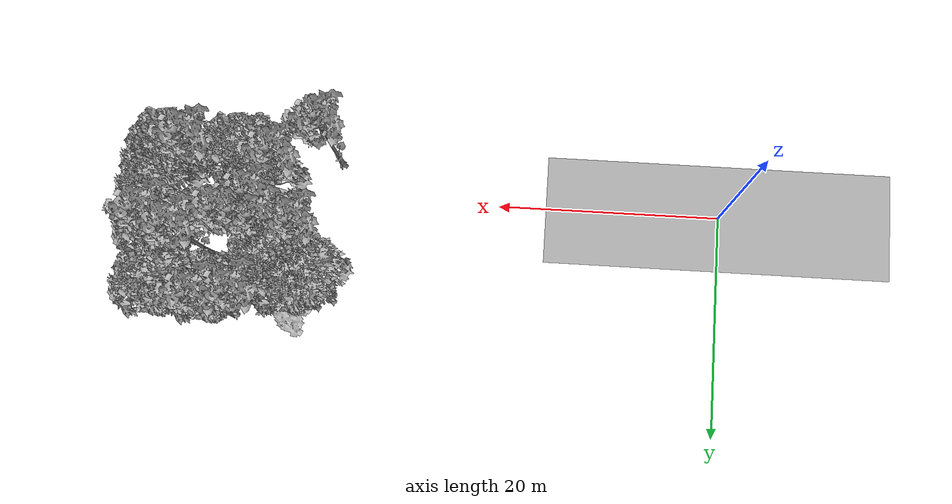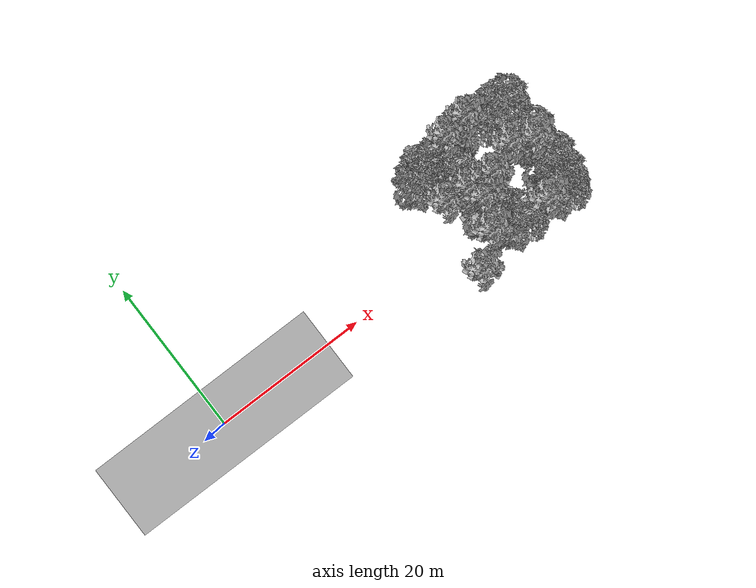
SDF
<sdf version="1.7">
 <world name="default">
  <model name="ground_plane">
   <static>1</static>
   <link name="link">
    <collision name="collision">
     <pose>-50 0 0 0 -0 0</pose>
     <geometry><plane><normal>0 0 1</normal><size>100 100</size></plane></geometry>
     <surface><contact><ode><min_depth>0.01</min_depth><max_vel>0</max_vel></ode></contact></surface>
    </collision>
    <visual name="grass">
     <cast_shadows>0</cast_shadows>
     <geometry>
      <mesh>
       <scale>0.5814285714285714 0.18142857142857144 0.1</scale>
       <uri>file://grass_plane/meshes/grass_plane.dae</uri>
      </mesh>
     </geometry>
    </visual>
   </link>
  </model>
  <model name="Tree 21">
   <static>1</static>
   <pose>36.001435455623735 5.011939128004059 0 1.57079 -0 0</pose>
   <link name="link">
    <collision name="collision">
     <geometry><mesh><scale>3.5 5 3.5</scale><uri>model://tree_9/meshes/tree_9.obj</uri></mesh></geometry>
    </collision>
    <visual name="visual">
     <geometry><mesh><scale>3.5 5 3.5</scale><uri>model://tree_9/meshes/tree_9.obj</uri></mesh></geometry>
    </visual>
   </link>
  </model>
  <model name="Tree 44">
   <static>1</static>
   <pose>38.991679474245345 7.388088115906413 0 1.57079 -0 0</pose>
   <link name="link">
    <collision name="collision">
     <geometry><mesh><scale>3.5 5 3.5</scale><uri>model://tree_2/meshes/tree_2.obj</uri></mesh></geometry>
    </collision>
    <visual name="visual">
     <geometry><mesh><scale>3.5 5 3.5</scale><uri>model://tree_2/meshes/tree_2.obj</uri></mesh></geometry>
    </visual>
   </link>
  </model>
  <model name="Tree 66">
   <static>1</static>
   <pose>35.595811001072434 8.510973884273003 0 1.57079 -0 0</pose>
   <link name="link">
    <collision name="collision">
     <geometry><mesh><scale>3.5 5 3.5</scale><uri>model://tree_2/meshes/tree_2.obj</uri></mesh></geometry>
    </collision>
    <visual name="visual">
     <geometry><mesh><scale>3.5 5 3.5</scale><uri>model://tree_2/meshes/tree_2.obj</uri></mesh></geometry>
    </visual>
   </link>
  </model>
  <model name="Tree 69">
   <static>1</static>
   <pose>43.19990417945013 11.152635457148062 0 1.57079 -0 0</pose>
   <link name="link">
    <collision name="collision">
     <geometry><mesh><scale>3.5 5 3.5</scale><uri>model://tree_9/meshes/tree_9.obj</uri></mesh></geometry>
    </collision>
    <visual name="visual">
     <geometry><mesh><scale>3.5 5 3.5</scale><uri>model://tree_9/meshes/tree_9.obj</uri></mesh></geometry>
    </visual>
   </link>
  </model>
  <model name="Tree 88">
   <static>1</static>
   <pose>39.724859648199455 1.0489064392241367 0 1.57079 -0 0</pose>
   <link name="link">
    <collision name="collision">
     <geometry><mesh><scale>3.5 5 3.5</scale><uri>model://tree_2/meshes/tree_2.obj</uri></mesh></geometry>
    </collision>
    <visual name="visual">
     <geometry><mesh><scale>3.5 5 3.5</scale><uri>model://tree_2/meshes/tree_2.obj</uri></mesh></geometry>
    </visual>
   </link>
  </model>
  <model name="Tree 93">
   <static>1</static>
   <pose>38.81823168101276 4.84569948492209 0 1.57079 -0 0</pose>
   <link name="link">
    <collision name="collision">
     <geometry><mesh><scale>3.5 5 3.5</scale><uri>model://tree_9/meshes/tree_9.obj</uri></mesh></geometry>
    </collision>
    <visual name="visual">
     <geometry><mesh><scale>3.5 5 3.5</scale><uri>model://tree_9/meshes/tree_9.obj</uri></mesh></geometry>
    </visual>
   </link>
  </model>
  <model name="Tree 135">
   <static>1</static>
   <pose>48.08057356001767 9.816680612721456 0 1.57079 -0 0</pose>
   <link name="link">
    <collision name="collision">
     <geometry><mesh><scale>3.5 5 3.5</scale><uri>model://tree_2/meshes/tree_2.obj</uri></mesh></geometry>
    </collision>
    <visual name="visual">
     <geometry><mesh><scale>3.5 5 3.5</scale><uri>model://tree_2/meshes/tree_2.obj</uri></mesh></geometry>
    </visual>
   </link>
  </model>
  <model name="Tree 167">
   <static>1</static>
   <pose>41.82630511120624 4.496623934367239 0 1.57079 -0 0</pose>
   <link name="link">
    <collision name="collision">
     <geometry><mesh><scale>3.5 5 3.5</scale><uri>model://tree_9/meshes/tree_9.obj</uri></mesh></geometry>
    </collision>
    <visual name="visual">
     <geometry><mesh><scale>3.5 5 3.5</scale><uri>model://tree_9/meshes/tree_9.obj</uri></mesh></geometry>
    </visual>
   </link>
  </model>
  <model name="Tree 173">
   <static>1</static>
   <pose>45.07631411805751 -1.387641726367292 0 1.57079 -0 0</pose>
   <link name="link">
    <collision name="collision">
     <geometry><mesh><scale>3.5 5 3.5</scale><uri>model://tree_9/meshes/tree_9.obj</uri></mesh></geometry>
    </collision>
    <visual name="visual">
     <geometry><mesh><scale>3.5 5 3.5</scale><uri>model://tree_9/meshes/tree_9.obj</uri></mesh></geometry>
    </visual>
   </link>
  </model>
  <model name="Tree 175">
   <static>1</static>
   <pose>37.676023382713424 10.560812747568534 0 1.57079 -0 0</pose>
   <link name="link">
    <collision name="collision">
     <geometry><mesh><scale>4 2.5 4</scale><uri>model://tree_1/meshes/tree_1.obj</uri></mesh></geometry>
    </collision>
    <visual name="visual">
     <geometry><mesh><scale>4 2.5 4</scale><uri>model://tree_1/meshes/tree_1.obj</uri></mesh></geometry>
    </visual>
   </link>
  </model>
  <model name="Tree 183">
   <static>1</static>
   <pose>34.549613623337166 -3.206361353545482 0 1.57079 -0 0</pose>
   <link name="link">
    <collision name="collision">
     <geometry><mesh><scale>3.5 5 3.5</scale><uri>model://tree_9/meshes/tree_9.obj</uri></mesh></geometry>
    </collision>
    <visual name="visual">
     <geometry><mesh><scale>3.5 5 3.5</scale><uri>model://tree_9/meshes/tree_9.obj</uri></mesh></geometry>
    </visual>
   </link>
  </model>
  <model name="Tree 203">
   <static>1</static>
   <pose>47.596727575085225 -1.8903867193700918 0 1.57079 -0 0</pose>
   <link name="link">
    <collision name="collision">
     <geometry><mesh><scale>3.5 5 3.5</scale><uri>model://tree_2/meshes/tree_2.obj</uri></mesh></geometry>
    </collision>
    <visual name="visual">
     <geometry><mesh><scale>3.5 5 3.5</scale><uri>model://tree_2/meshes/tree_2.obj</uri></mesh></geometry>
    </visual>
   </link>
  </model>
  <model name="Tree 204">
   <static>1</static>
   <pose>39.42615718583602 1.2528071771791396 0 1.57079 -0 0</pose>
   <link name="link">
    <collision name="collision">
     <geometry><mesh><scale>3 2 3</scale><uri>model://tree_3/meshes/tree_3.obj</uri></mesh></geometry>
    </collision>
    <visual name="visual">
     <geometry><mesh><scale>3 2 3</scale><uri>model://tree_3/meshes/tree_3.obj</uri></mesh></geometry>
    </visual>
   </link>
  </model>
  <model name="Tree 207">
   <static>1</static>
   <pose>41.65157880519499 -1.7909297351831306 0 1.57079 -0 0</pose>
   <link name="link">
    <collision name="collision">
     <geometry><mesh><scale>3.5 5 3.5</scale><uri>model://tree_2/meshes/tree_2.obj</uri></mesh></geometry>
    </collision>
    <visual name="visual">
     <geometry><mesh><scale>3.5 5 3.5</scale><uri>model://tree_2/meshes/tree_2.obj</uri></mesh></geometry>
    </visual>
   </link>
  </model>
  <model name="Tree 209">
   <static>1</static>
   <pose>45.57237649584762 5.875068786737067 0 1.57079 -0 0</pose>
   <link name="link">
    <collision name="collision">
     <geometry><mesh><scale>3.5 5 3.5</scale><uri>model://tree_9/meshes/tree_9.obj</uri></mesh></geometry>
    </collision>
    <visual name="visual">
     <geometry><mesh><scale>3.5 5 3.5</scale><uri>model://tree_9/meshes/tree_9.obj</uri></mesh></geometry>
    </visual>
   </link>
  </model>
  <model name="Tree 215">
   <static>1</static>
   <pose>48.231414996326976 -0.7983657383189033 0 1.57079 -0 0</pose>
   <link name="link">
    <collision name="collision">
     <geometry><mesh><scale>3.5 5 3.5</scale><uri>model://tree_2/meshes/tree_2.obj</uri></mesh></geometry>
    </collision>
    <visual name="visual">
     <geometry><mesh><scale>3.5 5 3.5</scale><uri>model://tree_2/meshes/tree_2.obj</uri></mesh></geometry>
    </visual>
   </link>
  </model>
  <model name="Tree 221">
   <static>1</static>
   <pose>39.52530744198158 3.0232007700321617 0 1.57079 -0 0</pose>
   <link name="link">
    <collision name="collision">
     <geometry><mesh><scale>3.5 5 3.5</scale><uri>model://tree_9/meshes/tree_9.obj</uri></mesh></geometry>
    </collision>
    <visual name="visual">
     <geometry><mesh><scale>3.5 5 3.5</scale><uri>model://tree_9/meshes/tree_9.obj</uri></mesh></geometry>
    </visual>
   </link>
  </model>
  <model name="Tree 246">
   <static>1</static>
   <pose>48.45502860071862 1.3866633771519723 0 1.57079 -0 0</pose>
   <link name="link">
    <collision name="collision">
     <geometry><mesh><scale>3.5 5 3.5</scale><uri>model://tree_2/meshes/tree_2.obj</uri></mesh></geometry>
    </collision>
    <visual name="visual">
     <geometry><mesh><scale>3.5 5 3.5</scale><uri>model://tree_2/meshes/tree_2.obj</uri></mesh></geometry>
    </visual>
   </link>
  </model>
  <model name="Tree 251">
   <static>1</static>
   <pose>43.640345990703665 10.135836929122803 0 1.57079 -0 0</pose>
   <link name="link">
    <collision name="collision">
     <geometry><mesh><scale>3.5 5 3.5</scale><uri>model://tree_2/meshes/tree_2.obj</uri></mesh></geometry>
    </collision>
    <visual name="visual">
     <geometry><mesh><scale>3.5 5 3.5</scale><uri>model://tree_2/meshes/tree_2.obj</uri></mesh></geometry>
    </visual>
   </link>
  </model>
  <model name="Tree 268">
   <static>1</static>
   <pose>37.953733625052564 -0.43157205856423886 0 1.57079 -0 0</pose>
   <link name="link">
    <collision name="collision">
     <geometry><mesh><scale>3.5 5 3.5</scale><uri>model://tree_9/meshes/tree_9.obj</uri></mesh></geometry>
    </collision>
    <visual name="visual">
     <geometry><mesh><scale>3.5 5 3.5</scale><uri>model://tree_9/meshes/tree_9.obj</uri></mesh></geometry>
    </visual>
   </link>
  </model>
  <model name="Tree 269">
   <static>1</static>
   <pose>48.2853000114477 5.204881344060013 0 1.57079 -0 0</pose>
   <link name="link">
    <collision name="collision">
     <geometry><mesh><scale>3.5 5 3.5</scale><uri>model://tree_2/meshes/tree_2.obj</uri></mesh></geometry>
    </collision>
    <visual name="visual">
     <geometry><mesh><scale>3.5 5 3.5</scale><uri>model://tree_2/meshes/tree_2.obj</uri></mesh></geometry>
    </visual>
   </link>
  </model>
  <model name="Tree 284">
   <static>1</static>
   <pose>40.33346816579281 4.510475880038474 0 1.57079 -0 0</pose>
   <link name="link">
    <collision name="collision">
     <geometry><mesh><scale>3.5 5 3.5</scale><uri>model://tree_9/meshes/tree_9.obj</uri></mesh></geometry>
    </collision>
    <visual name="visual">
     <geometry><mesh><scale>3.5 5 3.5</scale><uri>model://tree_9/meshes/tree_9.obj</uri></mesh></geometry>
    </visual>
   </link>
  </model>
  <model name="Tree 285">
   <static>1</static>
   <pose>40.305069586200176 10.726164678149217 0 1.57079 -0 0</pose>
   <link name="link">
    <collision name="collision">
     <geometry><mesh><scale>3.5 5 3.5</scale><uri>model://tree_9/meshes/tree_9.obj</uri></mesh></geometry>
    </collision>
    <visual name="visual">
     <geometry><mesh><scale>3.5 5 3.5</scale><uri>model://tree_9/meshes/tree_9.obj</uri></mesh></geometry>
    </visual>
   </link>
  </model>
  <model name="Tree 292">
   <static>1</static>
   <pose>47.82395596306077 4.79526836847543 0 1.57079 -0 0</pose>
   <link name="link">
    <collision name="collision">
     <geometry><mesh><scale>3.5 5 3.5</scale><uri>model://tree_9/meshes/tree_9.obj</uri></mesh></geometry>
    </collision>
    <visual name="visual">
     <geometry><mesh><scale>3.5 5 3.5</scale><uri>model://tree_9/meshes/tree_9.obj</uri></mesh></geometry>
    </visual>
   </link>
  </model>
  <model name="Tree 296">
   <static>1</static>
   <pose>36.83680819370467 9.094122049432425 0 1.57079 -0 0</pose>
   <link name="link">
    <collision name="collision">
     <geometry><mesh><scale>3.5 5 3.5</scale><uri>model://tree_2/meshes/tree_2.obj</uri></mesh></geometry>
    </collision>
    <visual name="visual">
     <geometry><mesh><scale>3.5 5 3.5</scale><uri>model://tree_2/meshes/tree_2.obj</uri></mesh></geometry>
    </visual>
   </link>
  </model>
 </world>
</sdf>
